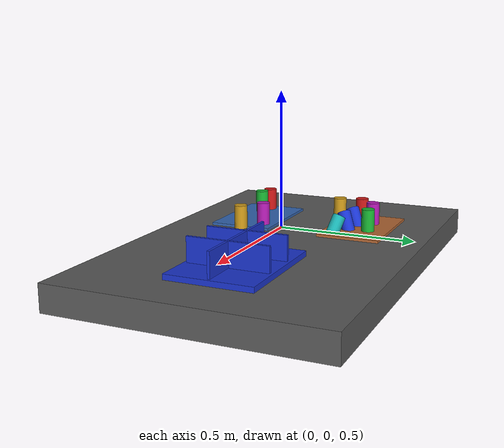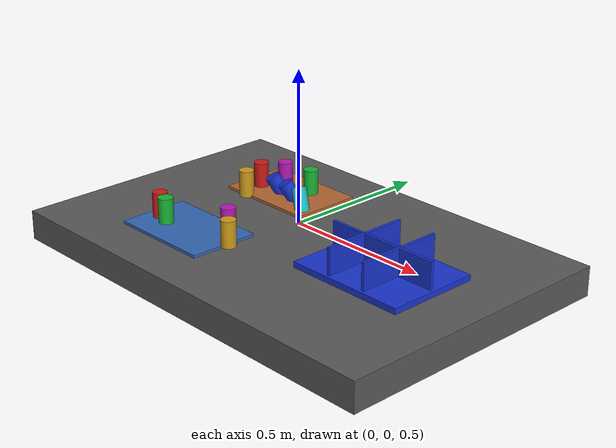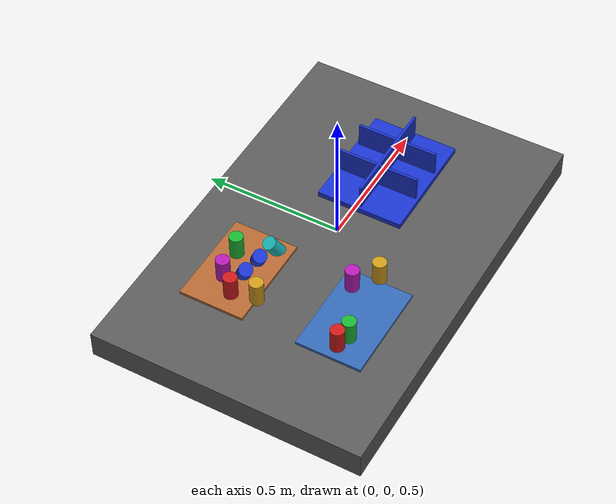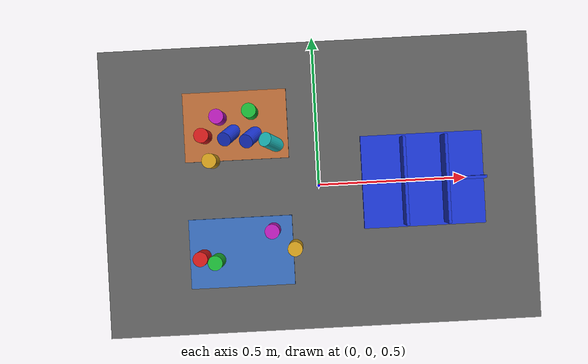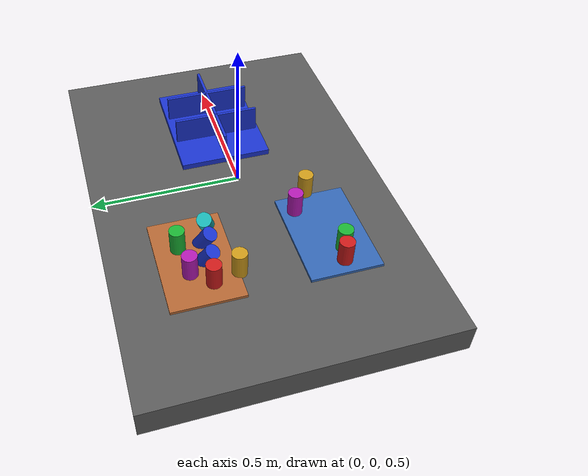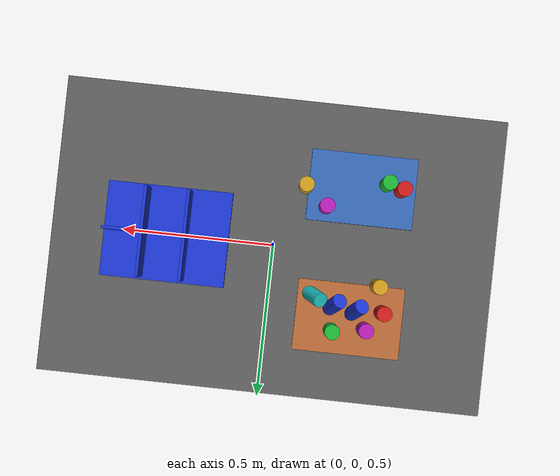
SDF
<?xml version="1.0" ?>
<sdf version="1.9">
  <!-- Standalone M1B scene.  The controller-backed Panda is spawned by the
       existing launch path; this file never alters the frozen M1A cube world. -->
  <world name="industrial_cylinder_v1">
    <physics name="bullet" type="bullet"><max_step_size>0.001</max_step_size><real_time_factor>1.0</real_time_factor></physics>
    <plugin name="gz::sim::systems::Physics" filename="gz-sim-physics-system"><engine><filename>gz-physics-bullet-featherstone-plugin</filename></engine></plugin>
    <plugin name="gz::sim::systems::UserCommands" filename="gz-sim-user-commands-system"/>
    <plugin name="gz::sim::systems::SceneBroadcaster" filename="gz-sim-scene-broadcaster-system"/>
    <plugin name="gz::sim::systems::Sensors" filename="gz-sim-sensors-system"><render_engine>ogre2</render_engine></plugin>
    <gravity>0 0 -9.81</gravity>
    <light type="directional" name="industrial_light"><pose>0 0 5 0 0 0</pose><direction>-0.3 0.2 -0.9</direction><diffuse>0.9 0.9 0.9 1</diffuse></light>
    <model name="industrial_work_table"><static>true</static><link name="link"><pose>0 0 0.4 0 0 0</pose><collision name="collision"><geometry><box><size>1.5 1.0 0.1</size></box></geometry></collision><visual name="visual"><geometry><box><size>1.5 1.0 0.1</size></box></geometry><material><diffuse>0.35 0.35 0.35 1</diffuse></material></visual></link></model>
    <model name="camera_fixture"><static>true</static><link name="camera_rgbd"><pose>-0.80 -0.80 1.40 0 0.77 0.93</pose><sensor name="front_rgbd" type="rgbd_camera"><always_on>1</always_on><update_rate>15</update_rate><topic>/xh/camera/rgbd</topic><camera><horizontal_fov>1.047</horizontal_fov><image><width>640</width><height>480</height><format>R8G8B8</format></image><clip><near>0.1</near><far>4.0</far></clip></camera></sensor></link></model>
    <model name="incoming_zone_a"><static>true</static><link name="link"><pose>-0.28 -0.22 0.455 0 0 0</pose><visual name="visual"><geometry><box><size>0.36 0.24 0.01</size></box></geometry><material><diffuse>0.2 0.4 0.7 1</diffuse></material></visual></link></model>
    <model name="incoming_zone_b"><static>true</static><link name="link"><pose>-0.28 0.22 0.455 0 0 0</pose><visual name="visual"><geometry><box><size>0.36 0.24 0.01</size></box></geometry><material><diffuse>0.7 0.4 0.2 1</diffuse></material></visual></link></model>
    <!-- M1B_RANDOM_PARTS_BEGIN -->
    <model name="cylinder_01"><pose>-0.3869 0.1861 0.5000 0.0000 0.0000 -0.8206</pose><link name="link"><inertial><mass>0.06</mass></inertial><collision name="collision"><geometry><cylinder><radius>0.025</radius><length>0.09</length></cylinder></geometry></collision><visual name="visual"><geometry><cylinder><radius>0.025</radius><length>0.09</length></cylinder></geometry><material><diffuse>0.800 0.100 0.100 1</diffuse><specular>0.15 0.15 0.15 1</specular></material></visual></link></model>
    <model name="cylinder_02"><pose>-0.3608 -0.2440 0.5000 3.1416 0.0000 2.7675</pose><link name="link"><inertial><mass>0.06</mass></inertial><collision name="collision"><geometry><cylinder><radius>0.025</radius><length>0.09</length></cylinder></geometry></collision><visual name="visual"><geometry><cylinder><radius>0.025</radius><length>0.09</length></cylinder></geometry><material><diffuse>0.100 0.700 0.200 1</diffuse><specular>0.15 0.15 0.15 1</specular></material></visual></link></model>
    <model name="cylinder_03"><pose>-0.2248 0.1770 0.4800 0.4500 -0.3000 -0.1820</pose><link name="link"><inertial><mass>0.06</mass></inertial><collision name="collision"><geometry><cylinder><radius>0.025</radius><length>0.09</length></cylinder></geometry></collision><visual name="visual"><geometry><cylinder><radius>0.025</radius><length>0.09</length></cylinder></geometry><material><diffuse>0.100 0.200 0.800 1</diffuse><specular>0.15 0.15 0.15 1</specular></material></visual></link></model>
    <model name="cylinder_04"><pose>-0.3645 0.1000 0.5000 0.0000 0.0000 -2.3391</pose><link name="link"><inertial><mass>0.06</mass></inertial><collision name="collision"><geometry><cylinder><radius>0.025</radius><length>0.09</length></cylinder></geometry></collision><visual name="visual"><geometry><cylinder><radius>0.025</radius><length>0.09</length></cylinder></geometry><material><diffuse>0.800 0.600 0.100 1</diffuse><specular>0.15 0.15 0.15 1</specular></material></visual></link></model>
    <model name="cylinder_05"><pose>-0.1650 -0.1482 0.5000 3.1416 0.0000 -1.3425</pose><link name="link"><inertial><mass>0.06</mass></inertial><collision name="collision"><geometry><cylinder><radius>0.025</radius><length>0.09</length></cylinder></geometry></collision><visual name="visual"><geometry><cylinder><radius>0.025</radius><length>0.09</length></cylinder></geometry><material><diffuse>0.700 0.100 0.700 1</diffuse><specular>0.15 0.15 0.15 1</specular></material></visual></link></model>
    <model name="cylinder_06"><pose>-0.1549 0.1536 0.4800 0.4500 -0.3000 -1.4829</pose><link name="link"><inertial><mass>0.06</mass></inertial><collision name="collision"><geometry><cylinder><radius>0.025</radius><length>0.09</length></cylinder></geometry></collision><visual name="visual"><geometry><cylinder><radius>0.025</radius><length>0.09</length></cylinder></geometry><material><diffuse>0.100 0.700 0.700 1</diffuse><specular>0.15 0.15 0.15 1</specular></material></visual></link></model>
    <model name="cylinder_07"><pose>-0.4105 -0.2287 0.5000 0.0000 0.0000 1.9318</pose><link name="link"><inertial><mass>0.06</mass></inertial><collision name="collision"><geometry><cylinder><radius>0.025</radius><length>0.09</length></cylinder></geometry></collision><visual name="visual"><geometry><cylinder><radius>0.025</radius><length>0.09</length></cylinder></geometry><material><diffuse>0.800 0.100 0.100 1</diffuse><specular>0.15 0.15 0.15 1</specular></material></visual></link></model>
    <model name="cylinder_08"><pose>-0.2230 0.2622 0.5000 3.1416 0.0000 -0.3036</pose><link name="link"><inertial><mass>0.06</mass></inertial><collision name="collision"><geometry><cylinder><radius>0.025</radius><length>0.09</length></cylinder></geometry></collision><visual name="visual"><geometry><cylinder><radius>0.025</radius><length>0.09</length></cylinder></geometry><material><diffuse>0.100 0.700 0.200 1</diffuse><specular>0.15 0.15 0.15 1</specular></material></visual></link></model>
    <model name="cylinder_09"><pose>-0.2991 0.1877 0.4800 0.4500 -0.3000 -0.1605</pose><link name="link"><inertial><mass>0.06</mass></inertial><collision name="collision"><geometry><cylinder><radius>0.025</radius><length>0.09</length></cylinder></geometry></collision><visual name="visual"><geometry><cylinder><radius>0.025</radius><length>0.09</length></cylinder></geometry><material><diffuse>0.100 0.200 0.800 1</diffuse><specular>0.15 0.15 0.15 1</specular></material></visual></link></model>
    <model name="cylinder_10"><pose>-0.0908 -0.2102 0.5000 0.0000 0.0000 2.0107</pose><link name="link"><inertial><mass>0.06</mass></inertial><collision name="collision"><geometry><cylinder><radius>0.025</radius><length>0.09</length></cylinder></geometry></collision><visual name="visual"><geometry><cylinder><radius>0.025</radius><length>0.09</length></cylinder></geometry><material><diffuse>0.800 0.600 0.100 1</diffuse><specular>0.15 0.15 0.15 1</specular></material></visual></link></model>
    <model name="cylinder_11"><pose>-0.3333 0.2478 0.5000 3.1416 0.0000 2.6245</pose><link name="link"><inertial><mass>0.06</mass></inertial><collision name="collision"><geometry><cylinder><radius>0.025</radius><length>0.09</length></cylinder></geometry></collision><visual name="visual"><geometry><cylinder><radius>0.025</radius><length>0.09</length></cylinder></geometry><material><diffuse>0.700 0.100 0.700 1</diffuse><specular>0.15 0.15 0.15 1</specular></material></visual></link></model>
    <!-- M1B_RANDOM_PARTS_END -->
    <model name="blue_partition_bin"><static>true</static><pose>0.36 0 0.45 0 0 0</pose><link name="link"><collision name="floor"><pose>0 0 0.01 0 0 0</pose><geometry><box><size>0.42 0.32 0.02</size></box></geometry></collision><visual name="floor_visual"><pose>0 0 0.01 0 0 0</pose><geometry><box><size>0.42 0.32 0.02</size></box></geometry><material><diffuse>0.1 0.2 0.8 1</diffuse></material></visual><visual name="row_divider"><pose>0 0 0.06 0 0 0</pose><geometry><box><size>0.40 0.01 0.10</size></box></geometry><material><diffuse>0.1 0.2 0.8 1</diffuse></material></visual><visual name="col_divider_a"><pose>-0.07 0 0.06 0 0 0</pose><geometry><box><size>0.01 0.30 0.10</size></box></geometry><material><diffuse>0.1 0.2 0.8 1</diffuse></material></visual><visual name="col_divider_b"><pose>0.07 0 0.06 0 0 0</pose><geometry><box><size>0.01 0.30 0.10</size></box></geometry><material><diffuse>0.1 0.2 0.8 1</diffuse></material></visual></link></model>
    <!-- Reserved only: second table, bin transport corridor, stackable-bin
         collision volume, and second arm mounting namespace. -->
  </world>
</sdf>
